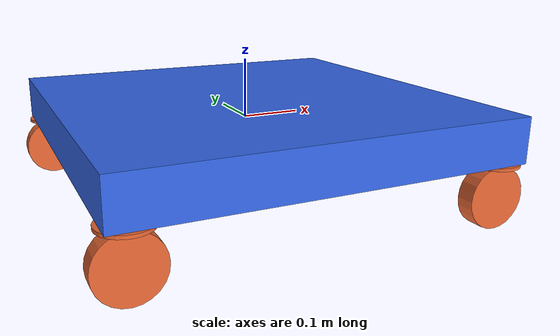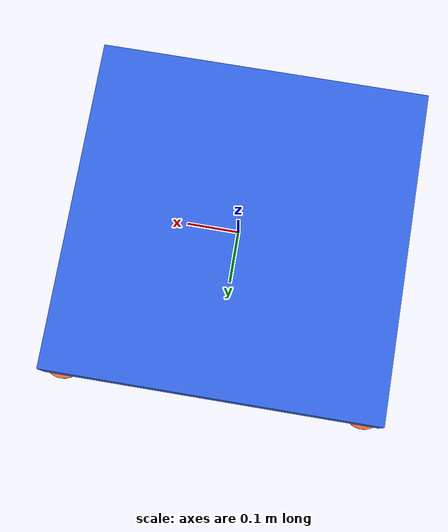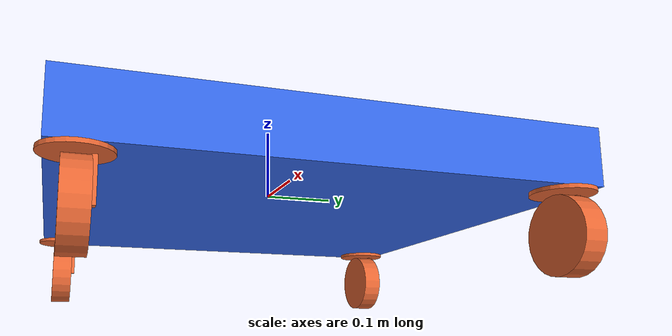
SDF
<?xml version="1.0" ?>
<sdf version="1.9">
    <model name="chassis">
        <link name="base_link">
            <collision name="base_collision">
                <geometry>
                    <box><size>0.65 0.65 0.075</size></box>
                </geometry>
            </collision>
            <visual name="base_visual">
                <geometry>
                    <box><size>0.65 0.65 0.075</size></box>
                </geometry>
                <material>
                    <ambient>0.1 0.3 0.8 1</ambient>
                    <diffuse>0.2 0.4 0.9 1</diffuse>
                </material>
            </visual>
            <inertial>
                <inertia>
                    <ixx>60</ixx>
                    <ixy>0</ixy>
                    <ixz>0</ixz>
                    <iyy>60</iyy>
                    <iyz>0</iyz>
                    <izz>60</izz>
                </inertia>
                <mass>60</mass>
            </inertial>
        </link>
        <!-- Front Left -->
        <link name="fl_base">
            <pose>0.2921 0.2921 -0.04 0 0 0</pose>
            <collision name="fl_base_collision">
                <geometry>
                    <cylinder>
                        <radius>0.04</radius>
                        <length>0.005</length>
                    </cylinder>
                </geometry>
            </collision>
            <visual name="fl_base_visual">
                <geometry>
                    <cylinder>
                        <radius>0.04</radius>
                        <length>0.005</length>
                    </cylinder>
                </geometry>
                <material>
                    <ambient>0.8 0.3 0.1 1</ambient>
                    <diffuse>0.9 0.4 0.2 1</diffuse>
                </material>
            </visual>
            <inertial>
                <inertia>
                    <ixx>0.032</ixx>
                    <ixy>0</ixy>
                    <ixz>0</ixz>
                    <iyy>0.032</iyy>
                    <iyz>0</iyz>
                    <izz>0.00012</izz>
                </inertia>
                <mass>0.6</mass>
            </inertial>
        </link>
        <link name="fl_axle">
            <pose>0.2921 0.310225 -0.0685 0 0 0</pose>
            <collision name="fl_axle_collision">
                <geometry>
                    <box><size>0.0125 0.00625 0.052</size></box>
                </geometry>
            </collision>
            <visual name="fl_axle_visual">
                <geometry>
                    <box><size>0.0125 0.00625 0.052</size></box>
                </geometry>
                <material>
                    <ambient>0.8 0.3 0.1 1</ambient>
                    <diffuse>0.9 0.4 0.2 1</diffuse>
                </material>
            </visual>
            <inertial>
                <inertia>
                    <ixx>0.032</ixx>
                    <ixy>0</ixy>
                    <ixz>0</ixz>
                    <iyy>0.032</iyy>
                    <iyz>0</iyz>
                    <izz>0.00012</izz>
                </inertia>
                <mass>0.6</mass>
            </inertial>
        </link>
        <link name="fl_wheel">
            <pose>0.2921 0.2921 -0.0945 1.5707 0 0</pose>
            <collision name="fl_wheel_collision">
                <geometry>
                    <cylinder>
                        <radius>0.0508</radius>
                        <length>0.03</length>
                    </cylinder>
                </geometry>
            </collision>
            <visual name="fl_wheel_visual">
                <geometry>
                    <cylinder>
                        <radius>0.0508</radius>
                        <length>0.03</length>
                    </cylinder>
                </geometry>
                <material>
                    <ambient>0.8 0.3 0.1 1</ambient>
                    <diffuse>0.9 0.4 0.2 1</diffuse>
                </material>
            </visual>
            <inertial>
                <inertia>
                    <ixx>0.032</ixx>
                    <ixy>0</ixy>
                    <ixz>0</ixz>
                    <iyy>0.032</iyy>
                    <iyz>0</iyz>
                    <izz>0.00012</izz>
                </inertia>
                <mass>0.6</mass>
            </inertial>
        </link>
        <joint name="fl_steer_joint" type="revolute">
            <parent>base_link</parent>
            <child>fl_base</child>
            <axis>
                <xyz>0 0 1</xyz>
            </axis>
        </joint>
        <joint name="fl_axle_joint" type="fixed">
            <parent>fl_base</parent>
            <child>fl_axle</child>
        </joint>
        <joint name="fl_wheel_joint" type="revolute">
            <parent>fl_axle</parent>
            <child>fl_wheel</child>
            <axis>
                <xyz>0 0 1</xyz>
            </axis>
        </joint>
        <!-- Front Right -->
        <link name="fr_base">
            <pose>0.2921 -0.2921 -0.04 0 0 0</pose>
            <collision name="fr_base_collision">
                <geometry>
                    <cylinder>
                        <radius>0.04</radius>
                        <length>0.005</length>
                    </cylinder>
                </geometry>
            </collision>
            <visual name="fr_base_visual">
                <geometry>
                    <cylinder>
                        <radius>0.04</radius>
                        <length>0.005</length>
                    </cylinder>
                </geometry>
                <material>
                    <ambient>0.8 0.3 0.1 1</ambient>
                    <diffuse>0.9 0.4 0.2 1</diffuse>
                </material>
            </visual>
            <inertial>
                <inertia>
                    <ixx>0.032</ixx>
                    <ixy>0</ixy>
                    <ixz>0</ixz>
                    <iyy>0.032</iyy>
                    <iyz>0</iyz>
                    <izz>0.00012</izz>
                </inertia>
                <mass>0.6</mass>
            </inertial>
        </link>
        <link name="fr_axle">
            <pose>0.2921 -0.273975 -0.0685 0 0 0</pose>
            <collision name="fr_axle_collision">
                <geometry>
                    <box><size>0.0125 0.00625 0.052</size></box>
                </geometry>
            </collision>
            <visual name="fr_axle_visual">
                <geometry>
                    <box><size>0.0125 0.00625 0.052</size></box>
                </geometry>
                <material>
                    <ambient>0.8 0.3 0.1 1</ambient>
                    <diffuse>0.9 0.4 0.2 1</diffuse>
                </material>
            </visual>
            <inertial>
                <inertia>
                    <ixx>0.032</ixx>
                    <ixy>0</ixy>
                    <ixz>0</ixz>
                    <iyy>0.032</iyy>
                    <iyz>0</iyz>
                    <izz>0.00012</izz>
                </inertia>
                <mass>0.6</mass>
            </inertial>
        </link>
        <link name="fr_wheel">
            <pose>0.2921 -0.2921 -0.0945 1.5707 0 0</pose>
            <collision name="fr_wheel_collision">
                <geometry>
                    <cylinder>
                        <radius>0.0508</radius>
                        <length>0.03</length>
                    </cylinder>
                </geometry>
            </collision>
            <visual name="fr_wheel_visual">
                <geometry>
                    <cylinder>
                        <radius>0.0508</radius>
                        <length>0.03</length>
                    </cylinder>
                </geometry>
                <material>
                    <ambient>0.8 0.3 0.1 1</ambient>
                    <diffuse>0.9 0.4 0.2 1</diffuse>
                </material>
            </visual>
            <inertial>
                <inertia>
                    <ixx>0.032</ixx>
                    <ixy>0</ixy>
                    <ixz>0</ixz>
                    <iyy>0.032</iyy>
                    <iyz>0</iyz>
                    <izz>0.00012</izz>
                </inertia>
                <mass>0.6</mass>
            </inertial>
        </link>
        <joint name="fr_steer_joint" type="revolute">
            <parent>base_link</parent>
            <child>fr_base</child>
            <axis>
                <xyz>0 0 1</xyz>
            </axis>
        </joint>
        <joint name="fr_axle_joint" type="fixed">
            <parent>fr_base</parent>
            <child>fr_axle</child>
        </joint>
        <joint name="fr_wheel_joint" type="revolute">
            <parent>fr_axle</parent>
            <child>fr_wheel</child>
            <axis>
                <xyz>0 0 1</xyz>
            </axis>
        </joint>
        <!-- Back Left -->
        <link name="bl_base">
            <pose>-0.2921 0.2921 -0.04 0 0 0</pose>
            <collision name="bl_base_collision">
                <geometry>
                    <cylinder>
                        <radius>0.04</radius>
                        <length>0.005</length>
                    </cylinder>
                </geometry>
            </collision>
            <visual name="bl_base_visual">
                <geometry>
                    <cylinder>
                        <radius>0.04</radius>
                        <length>0.005</length>
                    </cylinder>
                </geometry>
                <material>
                    <ambient>0.8 0.3 0.1 1</ambient>
                    <diffuse>0.9 0.4 0.2 1</diffuse>
                </material>
            </visual>
            <inertial>
                <inertia>
                    <ixx>0.032</ixx>
                    <ixy>0</ixy>
                    <ixz>0</ixz>
                    <iyy>0.032</iyy>
                    <iyz>0</iyz>
                    <izz>0.00012</izz>
                </inertia>
                <mass>0.6</mass>
            </inertial>
        </link>
        <link name="bl_axle">
            <pose>-0.2921 0.310225 -0.0685 0 0 0</pose>
            <collision name="bl_axle_collision">
                <geometry>
                    <box><size>0.0125 0.00625 0.052</size></box>
                </geometry>
            </collision>
            <visual name="bl_axle_visual">
                <geometry>
                    <box><size>0.0125 0.00625 0.052</size></box>
                </geometry>
                <material>
                    <ambient>0.8 0.3 0.1 1</ambient>
                    <diffuse>0.9 0.4 0.2 1</diffuse>
                </material>
            </visual>
            <inertial>
                <inertia>
                    <ixx>0.032</ixx>
                    <ixy>0</ixy>
                    <ixz>0</ixz>
                    <iyy>0.032</iyy>
                    <iyz>0</iyz>
                    <izz>0.00012</izz>
                </inertia>
                <mass>0.6</mass>
            </inertial>
        </link>
        <link name="bl_wheel">
            <pose>-0.2921 0.2921 -0.0945 1.5707 0 0</pose>
            <collision name="bl_wheel_collision">
                <geometry>
                    <cylinder>
                        <radius>0.0508</radius>
                        <length>0.03</length>
                    </cylinder>
                </geometry>
            </collision>
            <visual name="bl_wheel_visual">
                <geometry>
                    <cylinder>
                        <radius>0.0508</radius>
                        <length>0.03</length>
                    </cylinder>
                </geometry>
                <material>
                    <ambient>0.8 0.3 0.1 1</ambient>
                    <diffuse>0.9 0.4 0.2 1</diffuse>
                </material>
            </visual>
            <inertial>
                <inertia>
                    <ixx>0.032</ixx>
                    <ixy>0</ixy>
                    <ixz>0</ixz>
                    <iyy>0.032</iyy>
                    <iyz>0</iyz>
                    <izz>0.00012</izz>
                </inertia>
                <mass>0.6</mass>
            </inertial>
        </link>
        <joint name="bl_steer_joint" type="revolute">
            <parent>base_link</parent>
            <child>bl_base</child>
            <axis>
                <xyz>0 0 1</xyz>
            </axis>
        </joint>
        <joint name="bl_axle_joint" type="fixed">
            <parent>bl_base</parent>
            <child>bl_axle</child>
        </joint>
        <joint name="bl_wheel_joint" type="revolute">
            <parent>bl_axle</parent>
            <child>bl_wheel</child>
            <axis>
                <xyz>0 0 1</xyz>
            </axis>
        </joint>
        <!-- Back Right -->
        <link name="br_base">
            <pose>-0.2921 -0.2921 -0.04 0 0 0</pose>
            <collision name="br_base_collision">
                <geometry>
                    <cylinder>
                        <radius>0.04</radius>
                        <length>0.005</length>
                    </cylinder>
                </geometry>
            </collision>
            <visual name="br_base_visual">
                <geometry>
                    <cylinder>
                        <radius>0.04</radius>
                        <length>0.005</length>
                    </cylinder>
                </geometry>
                <material>
                    <ambient>0.8 0.3 0.1 1</ambient>
                    <diffuse>0.9 0.4 0.2 1</diffuse>
                </material>
            </visual>
            <inertial>
                <inertia>
                    <ixx>0.032</ixx>
                    <ixy>0</ixy>
                    <ixz>0</ixz>
                    <iyy>0.032</iyy>
                    <iyz>0</iyz>
                    <izz>0.00012</izz>
                </inertia>
                <mass>0.6</mass>
            </inertial>
        </link>
        <link name="br_axle">
            <pose>-0.2921 -0.273975 -0.0685 0 0 0</pose>
            <collision name="br_axle_collision">
                <geometry>
                    <box><size>0.0125 0.00625 0.052</size></box>
                </geometry>
            </collision>
            <visual name="br_axle_visual">
                <geometry>
                    <box><size>0.0125 0.00625 0.052</size></box>
                </geometry>
                <material>
                    <ambient>0.8 0.3 0.1 1</ambient>
                    <diffuse>0.9 0.4 0.2 1</diffuse>
                </material>
            </visual>
            <inertial>
                <inertia>
                    <ixx>0.032</ixx>
                    <ixy>0</ixy>
                    <ixz>0</ixz>
                    <iyy>0.032</iyy>
                    <iyz>0</iyz>
                    <izz>0.00012</izz>
                </inertia>
                <mass>0.6</mass>
            </inertial>
        </link>
        <link name="br_wheel">
            <pose>-0.2921 -0.2921 -0.0945 1.5707 0 0</pose>
            <collision name="br_wheel_collision">
                <geometry>
                    <cylinder>
                        <radius>0.0508</radius>
                        <length>0.03</length>
                    </cylinder>
                </geometry>
            </collision>
            <visual name="br_wheel_visual">
                <geometry>
                    <cylinder>
                        <radius>0.0508</radius>
                        <length>0.03</length>
                    </cylinder>
                </geometry>
                <material>
                    <ambient>0.8 0.3 0.1 1</ambient>
                    <diffuse>0.9 0.4 0.2 1</diffuse>
                </material>
            </visual>
            <inertial>
                <inertia>
                    <ixx>0.032</ixx>
                    <ixy>0</ixy>
                    <ixz>0</ixz>
                    <iyy>0.032</iyy>
                    <iyz>0</iyz>
                    <izz>0.00012</izz>
                </inertia>
                <mass>0.6</mass>
            </inertial>
        </link>
        <joint name="br_steer_joint" type="revolute">
            <parent>base_link</parent>
            <child>br_base</child>
            <axis>
                <xyz>0 0 1</xyz>
            </axis>
        </joint>
        <joint name="br_axle_joint" type="fixed">
            <parent>br_base</parent>
            <child>br_axle</child>
        </joint>
        <joint name="br_wheel_joint" type="revolute">
            <parent>br_axle</parent>
            <child>br_wheel</child>
            <axis>
                <xyz>0 0 1</xyz>
            </axis>
        </joint>
        <plugin
            filename="gz-sim-joint-controller-system"
            name="gz::sim::systems::JointController">
            <joint_name>fl_wheel_joint</joint_name>
            <topic_name>swerve/sim/desired_module_states/fl/cmd_vel</topic_name>
            <initial_velocity>0</initial_velocity>
        </plugin>
        <plugin
            filename="gz-sim-joint-position-controller-system"
            name="gz::sim::systems::JointPositionController">
            <joint_name>fl_steer_joint</joint_name>
            <topic>swerve/sim/desired_module_states/fl/cmd_pos</topic>
            <use_velocity_commands>true</use_velocity_commands>
            <cmd_max>10</cmd_max>
        </plugin>
        <plugin
            filename="gz-sim-joint-state-publisher-system"
            name="gz::sim::systems::JointStatePublisher">
            <joint_name>fl_steer_joint</joint_name>
        </plugin>
        <plugin
            filename="gz-sim-joint-controller-system"
            name="gz::sim::systems::JointController">
            <joint_name>fr_wheel_joint</joint_name>
            <topic_name>swerve/sim/desired_module_states/fr/cmd_vel</topic_name>
            <initial_velocity>0</initial_velocity>
        </plugin>
        <plugin
            filename="gz-sim-joint-controller-system"
            name="gz::sim::systems::JointController">
            <joint_name>bl_wheel_joint</joint_name>
            <topic_name>swerve/sim/desired_module_states/bl/cmd_vel</topic_name>
            <initial_velocity>0</initial_velocity>
        </plugin>
        <plugin
            filename="gz-sim-joint-controller-system"
            name="gz::sim::systems::JointController">
            <joint_name>br_wheel_joint</joint_name>
            <topic_name>swerve/sim/desired_module_states/br/cmd_vel</topic_name>
            <initial_velocity>0</initial_velocity>
        </plugin>

    </model>
</sdf>
